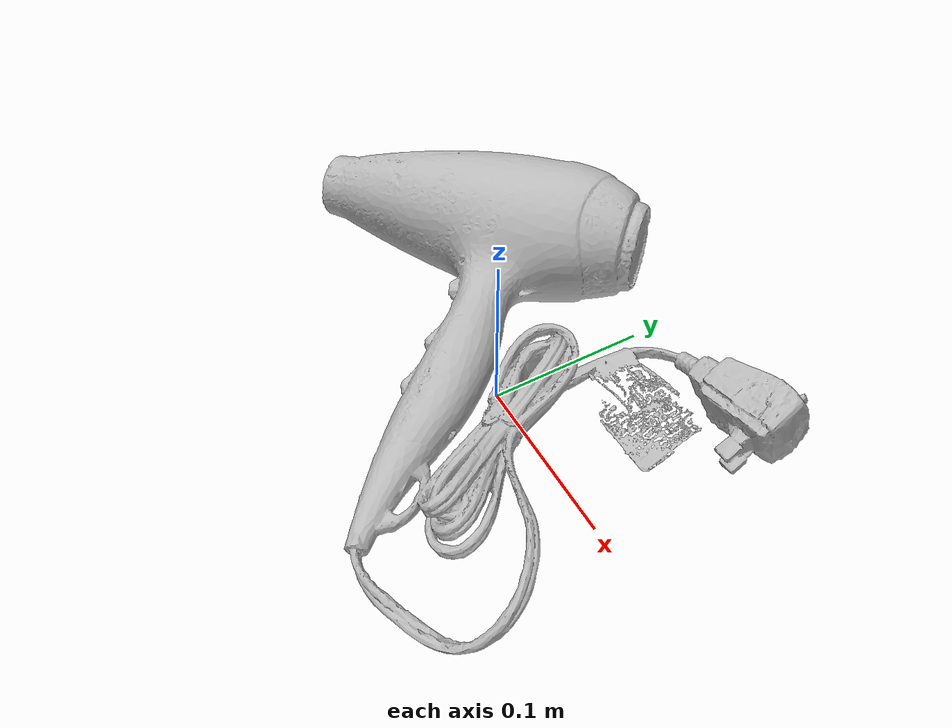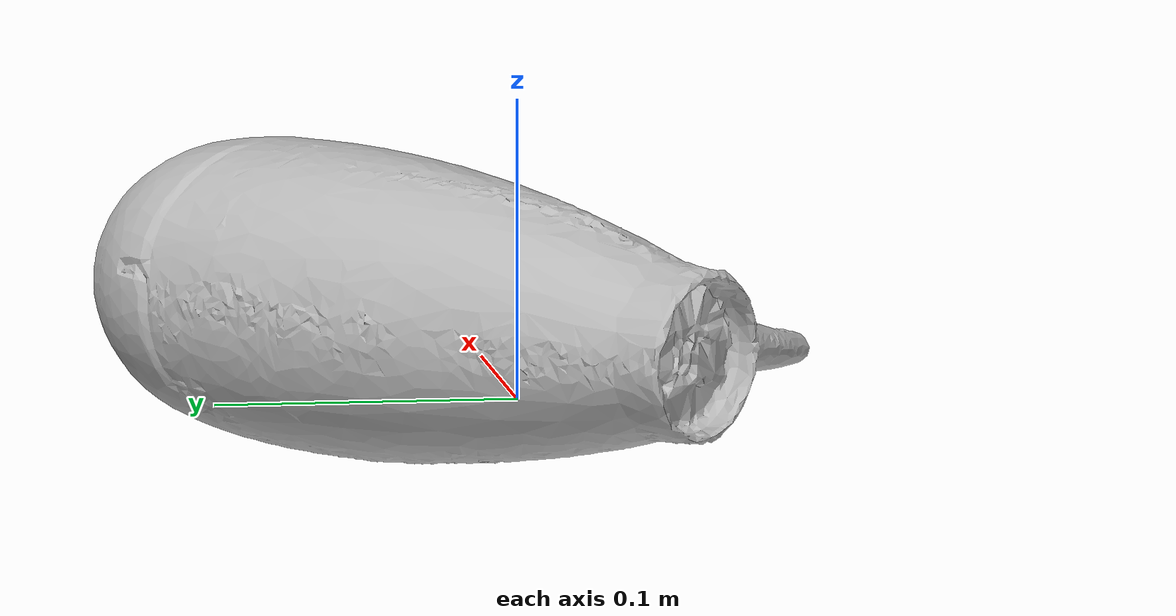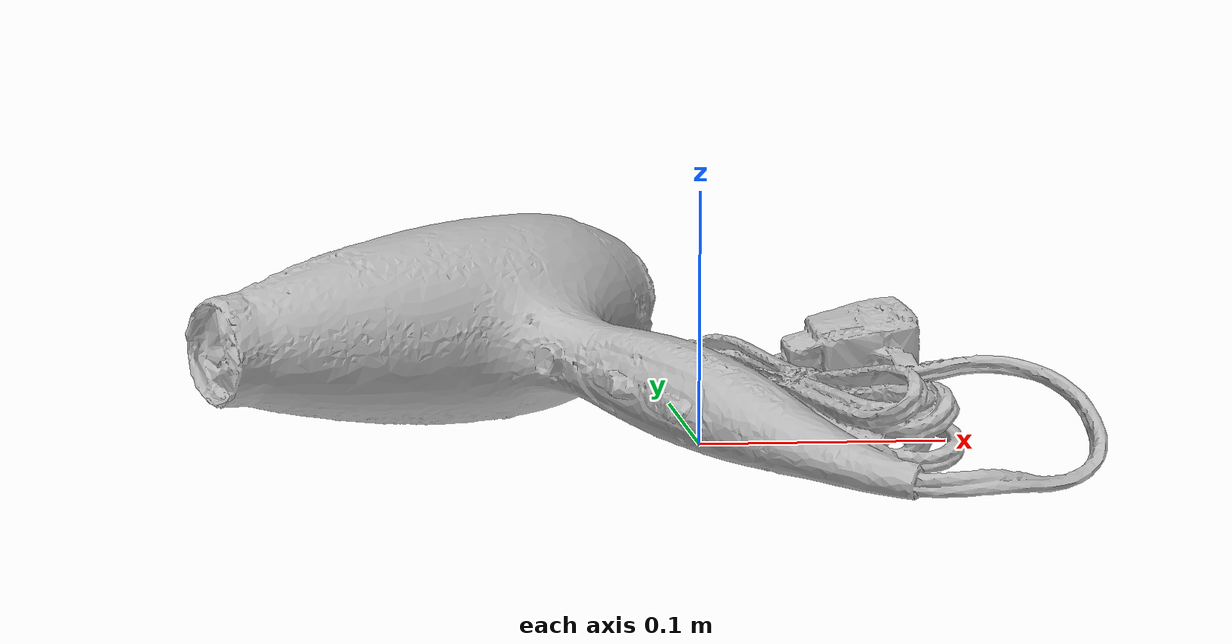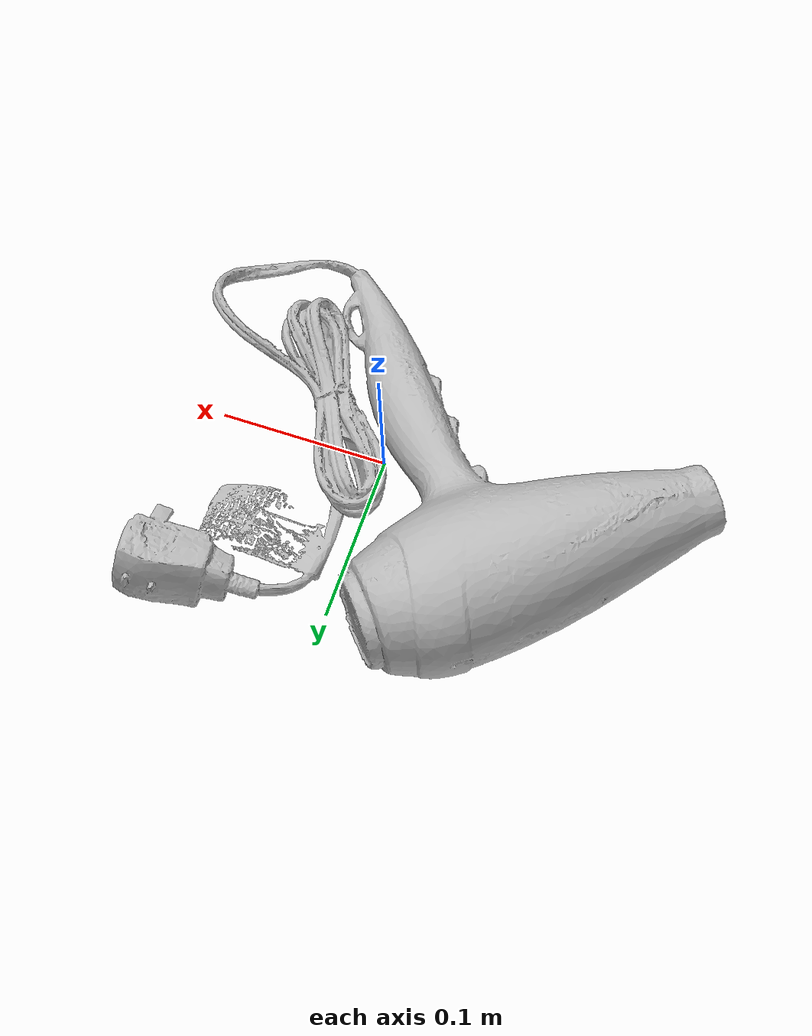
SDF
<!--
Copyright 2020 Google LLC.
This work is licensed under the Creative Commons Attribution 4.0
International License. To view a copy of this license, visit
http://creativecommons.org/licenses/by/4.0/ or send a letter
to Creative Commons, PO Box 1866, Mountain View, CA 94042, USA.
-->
<?xml version="1.0" ?>
<sdf version="1.6">
  <model name="Lovable_Huggable_Cuddly_Boutique_Teddy_Bear_Beige">
    <link name="link_0">
      <visual name="visual">
        <geometry>
          <mesh>
            <uri>meshes/model.obj</uri>
          </mesh>
        </geometry>
      </visual>
      <collision name="collision_0">
        <geometry>
          <mesh>
            <uri>meshes/model.obj</uri>
          </mesh>
        </geometry>
      </collision>
    </link>
  </model>
</sdf>
